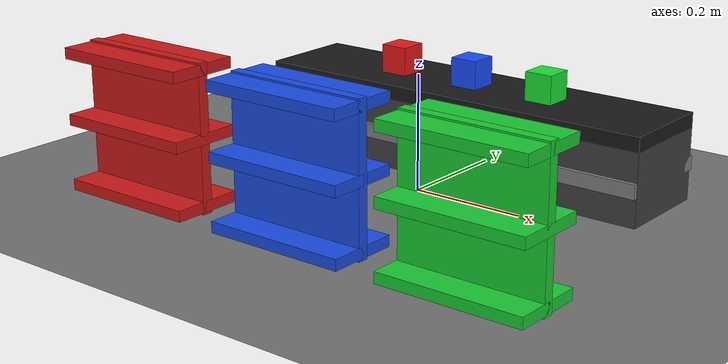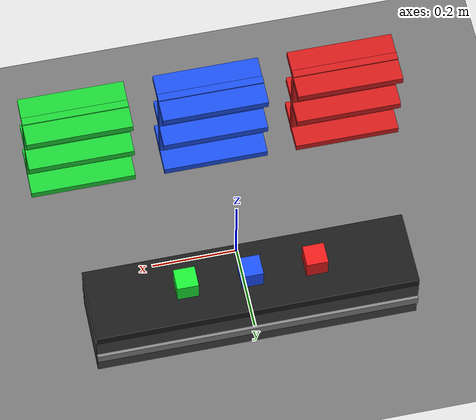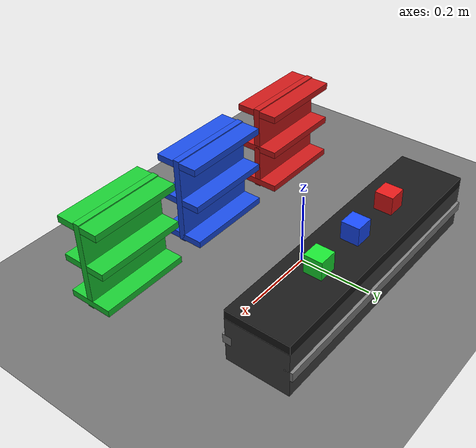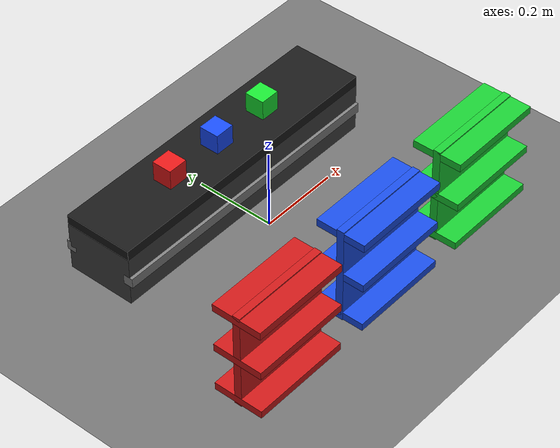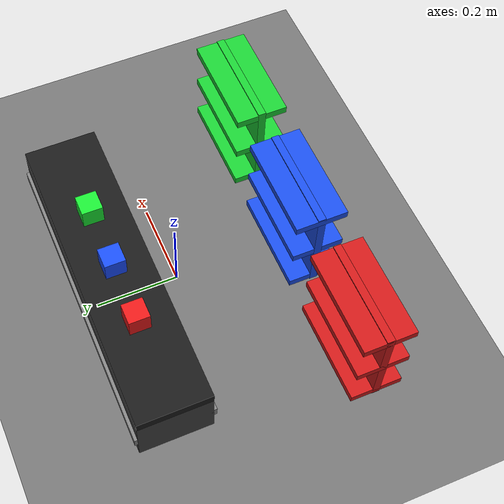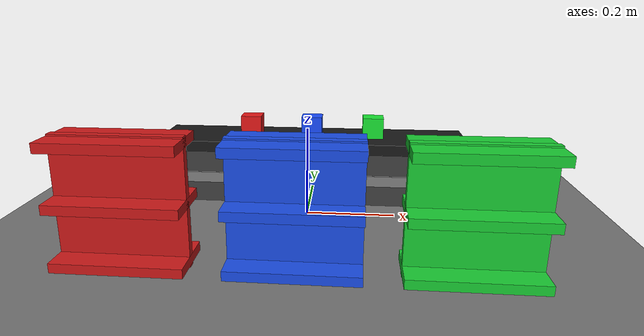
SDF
<?xml version="1.0"?>

<sdf version="1.8">

  <world name="warehouse">

    <!-- PHYSICS -->

    <physics name="1ms" type="ode">
      <max_step_size>0.001</max_step_size>
      <real_time_factor>1</real_time_factor>
      <real_time_update_rate>1000</real_time_update_rate>
    </physics>

    <!-- SCENE -->

    <scene>
      <ambient>0.4 0.4 0.4 1</ambient>
      <background>0.7 0.7 0.7 1</background>
      <shadows>true</shadows>
    </scene>

    <!-- SUN -->

    <light name="sun" type="directional">
      <pose>0 0 2.5 0 0 0</pose>

      <cast_shadows>true</cast_shadows>

      <direction>-0.5 0.5 -1</direction>

      <diffuse>0.8 0.8 0.8 1</diffuse>
      <specular>0.2 0.2 0.2 1</specular>
    </light>

    <!-- GROUND -->

    <model name="ground">

      <static>true</static>

      <link name="ground_link">

        <collision name="collision">
          <geometry>
            <plane>
              <normal>0 0 1</normal>
              <size>5 5</size>
            </plane>
          </geometry>
        </collision>

        <visual name="visual">

          <geometry>
            <plane>
              <normal>0 0 1</normal>
              <size>5 5</size>
            </plane>
          </geometry>

          <material>
            <ambient>0.35 0.35 0.35 1</ambient>
            <diffuse>0.45 0.45 0.45 1</diffuse>
          </material>

        </visual>

      </link>

    </model>

    <!-- RED SHELF -->

    <model name="red_shelf">

      <static>true</static>

      <!-- 로봇 뒤쪽 왼쪽 -->
      <pose>-0.32 -0.30 0 0 0 0</pose>

      <link name="shelf_link">

        <!-- Back -->

        <collision name="back_collision">

          <pose>0 0 0.125 0 0 0</pose>

          <geometry>
            <box>
              <size>0.25 0.01875 0.25</size>
            </box>
          </geometry>

        </collision>

        <visual name="back">

          <pose>0 0 0.125 0 0 0</pose>

          <geometry>
            <box>
              <size>0.25 0.01875 0.25</size>
            </box>
          </geometry>

          <material>
            <ambient>0.7 0.1 0.1 1</ambient>
            <diffuse>0.8 0.1 0.1 1</diffuse>
          </material>

        </visual>

        <!-- Bottom -->

        <collision name="bottom_collision">

          <pose>0 0 0.0125 0 0 0</pose>

          <geometry>
            <box>
              <size>0.25 0.125 0.01875</size>
            </box>
          </geometry>

        </collision>

        <visual name="bottom">

          <pose>0 0 0.0125 0 0 0</pose>

          <geometry>
            <box>
              <size>0.25 0.125 0.01875</size>
            </box>
          </geometry>

          <material>
            <ambient>0.7 0.1 0.1 1</ambient>
            <diffuse>0.8 0.1 0.1 1</diffuse>
          </material>

        </visual>

        <!-- Middle -->

        <collision name="middle_collision">

          <pose>0 0 0.125 0 0 0</pose>

          <geometry>
            <box>
              <size>0.25 0.125 0.01875</size>
            </box>
          </geometry>

        </collision>

        <visual name="middle">

          <pose>0 0 0.125 0 0 0</pose>

          <geometry>
            <box>
              <size>0.25 0.125 0.01875</size>
            </box>
          </geometry>

          <material>
            <ambient>0.7 0.1 0.1 1</ambient>
            <diffuse>0.8 0.1 0.1 1</diffuse>
          </material>

        </visual>

        <!-- Top -->

        <collision name="top_collision">

          <pose>0 0 0.2375 0 0 0</pose>

          <geometry>
            <box>
              <size>0.25 0.125 0.01875</size>
            </box>
          </geometry>

        </collision>

        <visual name="top">

          <pose>0 0 0.2375 0 0 0</pose>

          <geometry>
            <box>
              <size>0.25 0.125 0.01875</size>
            </box>
          </geometry>

          <material>
            <ambient>0.7 0.1 0.1 1</ambient>
            <diffuse>0.8 0.1 0.1 1</diffuse>
          </material>

        </visual>

      </link>

    </model>

    <!-- BLUE SHELF -->

    <model name="blue_shelf">

      <static>true</static>

      <!-- 가운데 -->
      <pose>0 -0.30 0 0 0 0</pose>

      <link name="shelf_link">

        <!-- Back -->

        <collision name="back_collision">

          <pose>0 0 0.125 0 0 0</pose>

          <geometry>
            <box>
              <size>0.25 0.01875 0.25</size>
            </box>
          </geometry>

        </collision>

        <visual name="back">

          <pose>0 0 0.125 0 0 0</pose>

          <geometry>
            <box>
              <size>0.25 0.01875 0.25</size>
            </box>
          </geometry>

          <material>
            <ambient>0.1 0.2 0.7 1</ambient>
            <diffuse>0.1 0.3 0.9 1</diffuse>
          </material>

        </visual>

        <!-- Bottom -->

        <collision name="bottom_collision">

          <pose>0 0 0.0125 0 0 0</pose>

          <geometry>
            <box>
              <size>0.25 0.125 0.01875</size>
            </box>
          </geometry>

        </collision>

        <visual name="bottom">

          <pose>0 0 0.0125 0 0 0</pose>

          <geometry>
            <box>
              <size>0.25 0.125 0.01875</size>
            </box>
          </geometry>

          <material>
            <ambient>0.1 0.2 0.7 1</ambient>
            <diffuse>0.1 0.3 0.9 1</diffuse>
          </material>

        </visual>

        <!-- Middle -->

        <collision name="middle_collision">

          <pose>0 0 0.125 0 0 0</pose>

          <geometry>
            <box>
              <size>0.25 0.125 0.01875</size>
            </box>
          </geometry>

        </collision>

        <visual name="middle">

          <pose>0 0 0.125 0 0 0</pose>

          <geometry>
            <box>
              <size>0.25 0.125 0.01875</size>
            </box>
          </geometry>

          <material>
            <ambient>0.1 0.2 0.7 1</ambient>
            <diffuse>0.1 0.3 0.9 1</diffuse>
          </material>

        </visual>

        <!-- Top -->

        <collision name="top_collision">

          <pose>0 0 0.2375 0 0 0</pose>

          <geometry>
            <box>
              <size>0.25 0.125 0.01875</size>
            </box>
          </geometry>

        </collision>

        <visual name="top">

          <pose>0 0 0.2375 0 0 0</pose>

          <geometry>
            <box>
              <size>0.25 0.125 0.01875</size>
            </box>
          </geometry>

          <material>
            <ambient>0.1 0.2 0.7 1</ambient>
            <diffuse>0.1 0.3 0.9 1</diffuse>
          </material>

        </visual>

      </link>

    </model>

    <!-- GREEN SHELF -->

    <model name="green_shelf">

      <static>true</static>

      <!-- 로봇 뒤쪽 오른쪽 -->
      <pose>0.32 -0.30 0 0 0 0</pose>

      <link name="shelf_link">

        <!-- Back -->

        <collision name="back_collision">

          <pose>0 0 0.125 0 0 0</pose>

          <geometry>
            <box>
              <size>0.25 0.01875 0.25</size>
            </box>
          </geometry>

        </collision>

        <visual name="back">

          <pose>0 0 0.125 0 0 0</pose>

          <geometry>
            <box>
              <size>0.25 0.01875 0.25</size>
            </box>
          </geometry>

          <material>
            <ambient>0.1 0.6 0.2 1</ambient>
            <diffuse>0.1 0.8 0.2 1</diffuse>
          </material>

        </visual>

        <!-- Bottom -->

        <collision name="bottom_collision">

          <pose>0 0 0.0125 0 0 0</pose>

          <geometry>
            <box>
              <size>0.25 0.125 0.01875</size>
            </box>
          </geometry>

        </collision>

        <visual name="bottom">

          <pose>0 0 0.0125 0 0 0</pose>

          <geometry>
            <box>
              <size>0.25 0.125 0.01875</size>
            </box>
          </geometry>

          <material>
            <ambient>0.1 0.6 0.2 1</ambient>
            <diffuse>0.1 0.8 0.2 1</diffuse>
          </material>

        </visual>

        <!-- Middle -->

        <collision name="middle_collision">

          <pose>0 0 0.125 0 0 0</pose>

          <geometry>
            <box>
              <size>0.25 0.125 0.01875</size>
            </box>
          </geometry>

        </collision>

        <visual name="middle">

          <pose>0 0 0.125 0 0 0</pose>

          <geometry>
            <box>
              <size>0.25 0.125 0.01875</size>
            </box>
          </geometry>

          <material>
            <ambient>0.1 0.6 0.2 1</ambient>
            <diffuse>0.1 0.8 0.2 1</diffuse>
          </material>

        </visual>

        <!-- Top -->

        <collision name="top_collision">

          <pose>0 0 0.2375 0 0 0</pose>

          <geometry>
            <box>
              <size>0.25 0.125 0.01875</size>
            </box>
          </geometry>

        </collision>

        <visual name="top">

          <pose>0 0 0.2375 0 0 0</pose>

          <geometry>
            <box>
              <size>0.25 0.125 0.01875</size>
            </box>
          </geometry>

          <material>
            <ambient>0.1 0.6 0.2 1</ambient>
            <diffuse>0.1 0.8 0.2 1</diffuse>
          </material>

        </visual>

      </link>

    </model>

    <!-- CONVEYOR -->

    <model name="conveyor">

      <static>true</static>

      <pose>0 0.15 0.0625 0 0 0</pose>

      <link name="conveyor_link">

        <!-- Base -->

        <collision name="base_collision">

          <pose>0 0 0 0 0 0</pose>

          <geometry>
            <box>
              <size>0.75 0.175 0.125</size>
            </box>
          </geometry>

        </collision>

        <visual name="base">

          <pose>0 0 0 0 0 0</pose>

          <geometry>
            <box>
              <size>0.75 0.175 0.125</size>
            </box>
          </geometry>

          <material>
            <ambient>0.15 0.15 0.15 1</ambient>
            <diffuse>0.25 0.25 0.25 1</diffuse>
          </material>

        </visual>

        <!-- Belt -->

        <collision name="belt_collision">

          <pose>0 0 0.075 0 0 0</pose>

          <geometry>
            <box>
              <size>0.75 0.175 0.025</size>
            </box>
          </geometry>

        </collision>

        <visual name="top">

          <pose>0 0 0.075 0 0 0</pose>

          <geometry>
            <box>
              <size>0.75 0.175 0.025</size>
            </box>
          </geometry>

          <material>
            <ambient>0.05 0.05 0.05 1</ambient>
            <diffuse>0.1 0.1 0.1 1</diffuse>
          </material>

        </visual>

        <!-- Left Rail -->

        <collision name="left_rail_collision">

          <pose>0 0.0825 0.10 0 0 0</pose>

          <geometry>
            <box>
              <size>0.75 0.025 0.025</size>
            </box>
          </geometry>

        </collision>

        <visual name="left_rail">

          <pose>0 0.0825 0 0 0 0</pose>

          <geometry>
            <box>
              <size>0.75 0.025 0.025</size>
            </box>
          </geometry>

          <material>
            <ambient>0.4 0.4 0.4 1</ambient>
            <diffuse>0.5 0.5 0.5 1</diffuse>
          </material>

        </visual>

        <!-- Right Rail -->

        <collision name="right_rail_collision">

          <pose>0 -0.0825 0.10 0 0 0</pose>

          <geometry>
            <box>
              <size>0.75 0.025 0.025</size>
            </box>
          </geometry>

        </collision>

        <visual name="right_rail">

          <pose>0 -0.0825 0 0 0 0</pose>

          <geometry>
            <box>
              <size>0.75 0.025 0.025</size>
            </box>
          </geometry>

          <material>
            <ambient>0.4 0.4 0.4 1</ambient>
            <diffuse>0.5 0.5 0.5 1</diffuse>
          </material>

        </visual>

      </link>

    </model>

    <!-- RED BOX -->

    <model name="red_box">

      <pose>-0.15 0.15 0.175 0 0 0</pose>

      <static>false</static>

      <link name="box_link">

        <collision name="collision">

          <geometry>
            <box>
              <size>0.05 0.05 0.05</size>
            </box>
          </geometry>

        </collision>

        <visual name="visual">

          <geometry>
            <box>
              <size>0.05 0.05 0.05</size>
            </box>
          </geometry>

          <material>
            <ambient>0.8 0.1 0.1 1</ambient>
            <diffuse>0.9 0.1 0.1 1</diffuse>
            <specular>0.2 0.2 0.2 1</specular>
          </material>

        </visual>

        <inertial>

          <mass>0.5</mass>

          <inertia>
            <ixx>0.000259765625</ixx>
            <iyy>0.000259765625</iyy>
            <izz>0.000259765625</izz>
            <ixy>0</ixy>
            <ixz>0</ixz>
            <iyz>0</iyz>
          </inertia>

        </inertial>

      </link>

    </model>

    <!-- BLUE BOX -->

    <model name="blue_box">

      <pose>0 0.15 0.175 0 0 0</pose>

      <static>false</static>

      <link name="box_link">

        <collision name="collision">

          <geometry>
            <box>
              <size>0.05 0.05 0.05</size>
            </box>
          </geometry>

        </collision>

        <visual name="visual">

          <geometry>
            <box>
              <size>0.05 0.05 0.05</size>
            </box>
          </geometry>

          <material>
            <ambient>0.1 0.2 0.8 1</ambient>
            <diffuse>0.1 0.3 1.0 1</diffuse>
            <specular>0.2 0.2 0.2 1</specular>
          </material>

        </visual>

        <inertial>

          <mass>0.5</mass>

          <inertia>
            <ixx>0.000259765625</ixx>
            <iyy>0.000259765625</iyy>
            <izz>0.000259765625</izz>
            <ixy>0</ixy>
            <ixz>0</ixz>
            <iyz>0</iyz>
          </inertia>

        </inertial>

      </link>

    </model>

    <!-- GREEN BOX -->

    <model name="green_box">

      <pose>0.15 0.15 0.175 0 0 0</pose>

      <static>false</static>

      <link name="box_link">

        <collision name="collision">

          <geometry>
            <box>
              <size>0.05 0.05 0.05</size>
            </box>
          </geometry>

        </collision>

        <visual name="visual">

          <geometry>
            <box>
              <size>0.05 0.05 0.05</size>
            </box>
          </geometry>

          <material>
            <ambient>0.1 0.7 0.2 1</ambient>
            <diffuse>0.1 0.9 0.2 1</diffuse>
            <specular>0.2 0.2 0.2 1</specular>
          </material>

        </visual>

        <inertial>

          <mass>0.5</mass>

          <inertia>
            <ixx>0.000259765625</ixx>
            <iyy>0.000259765625</iyy>
            <izz>0.000259765625</izz>
            <ixy>0</ixy>
            <ixz>0</ixz>
            <iyz>0</iyz>
          </inertia>

        </inertial>

      </link>

    </model>

  </world>

</sdf>
